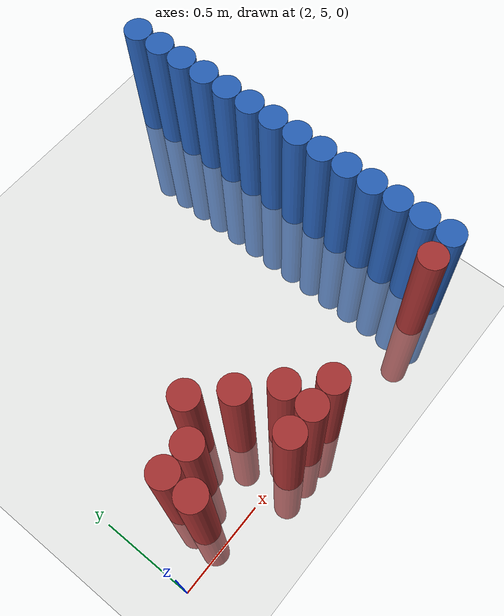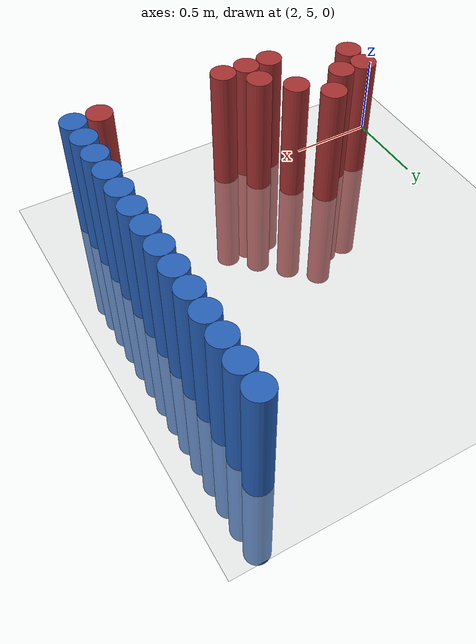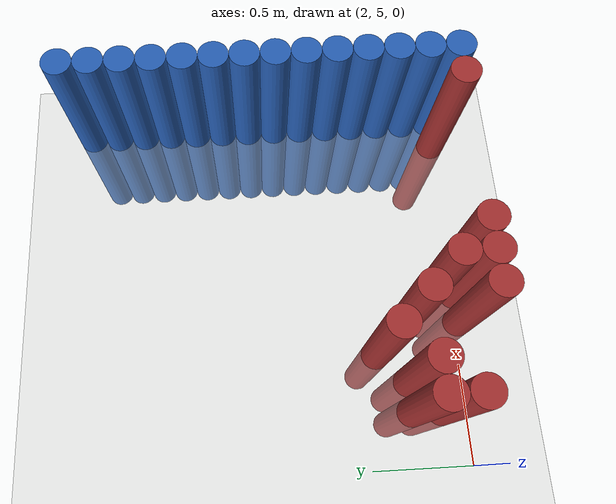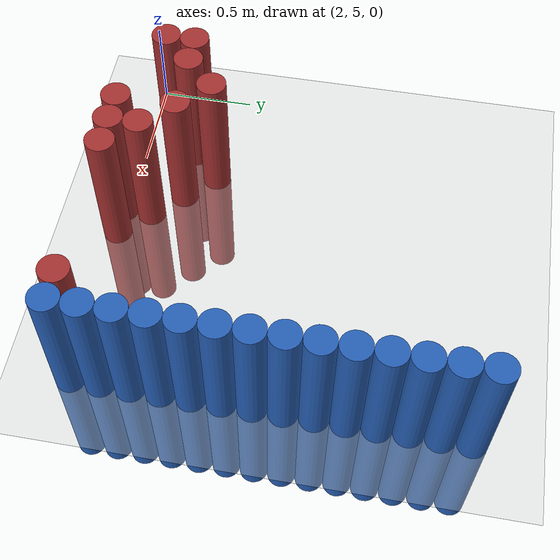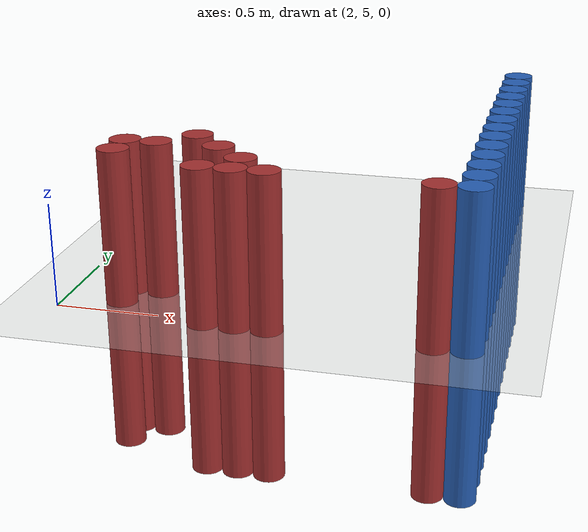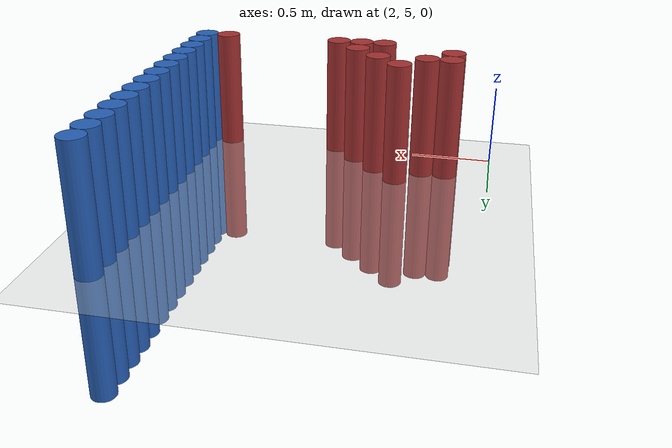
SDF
<sdf version="1.6">
 <world name="default">
  <model name="ground_plane">
   <static>1</static>
   <link name="link">
    <collision name="collision">
     <geometry><plane><normal>0 0 1</normal><size>100 100</size></plane></geometry>
     <surface><friction><ode><mu>100</mu><mu2>50</mu2></ode></friction></surface>
    </collision>
    <visual name="visual">
     <cast_shadows>0</cast_shadows>
     <geometry><plane><normal>0 0 1</normal><size>100 100</size></plane></geometry>
     <material>
      <script><uri>file://media/materials/scripts/gazebo.material</uri><name>Gazebo/Grey</name></script>
     </material>
    </visual>
   </link>
  </model>
  <model name="unit_cylinder_180">
   <static>1</static>
   <pose>3.925000 4.975000 0.000000 0.000000 0.000000 0.000000</pose>
   <link name="link">
    <inertial>
     <mass>1</mass>
     <inertia><ixx>0.145833</ixx><ixy>0</ixy><ixz>0</ixz><iyy>0.145833</iyy><iyz>0</iyz><izz>0.125</izz></inertia>
    </inertial>
    <collision name="collision">
     <geometry><cylinder><radius>0.075000</radius><length>1.5</length></cylinder></geometry>
    </collision>
    <visual name="visual">
     <geometry><cylinder><radius>0.075000</radius><length>1.5</length></cylinder></geometry>
     <material>
      <ambient>0.152000 0.379000 0.720000 1</ambient>
      <diffuse>0.152000 0.379000 0.720000 1</diffuse>
     </material>
     <material>
      <script><name>Gazebo/Grey</name><uri>file://media/materials/scripts/gazebo.material</uri></script>
     </material>
    </visual>
   </link>
  </model>
  <model name="unit_cylinder_182">
   <static>1</static>
   <pose>3.925000 5.125000 0.000000 0.000000 0.000000 0.000000</pose>
   <link name="link">
    <inertial>
     <mass>1</mass>
     <inertia><ixx>0.145833</ixx><ixy>0</ixy><ixz>0</ixz><iyy>0.145833</iyy><iyz>0</iyz><izz>0.125</izz></inertia>
    </inertial>
    <collision name="collision">
     <geometry><cylinder><radius>0.075000</radius><length>1.5</length></cylinder></geometry>
    </collision>
    <visual name="visual">
     <geometry><cylinder><radius>0.075000</radius><length>1.5</length></cylinder></geometry>
     <material>
      <ambient>0.152000 0.379000 0.720000 1</ambient>
      <diffuse>0.152000 0.379000 0.720000 1</diffuse>
     </material>
     <material>
      <script><name>Gazebo/Grey</name><uri>file://media/materials/scripts/gazebo.material</uri></script>
     </material>
    </visual>
   </link>
  </model>
  <model name="unit_cylinder_184">
   <static>1</static>
   <pose>3.925000 5.275000 0.000000 0.000000 0.000000 0.000000</pose>
   <link name="link">
    <inertial>
     <mass>1</mass>
     <inertia><ixx>0.145833</ixx><ixy>0</ixy><ixz>0</ixz><iyy>0.145833</iyy><iyz>0</iyz><izz>0.125</izz></inertia>
    </inertial>
    <collision name="collision">
     <geometry><cylinder><radius>0.075000</radius><length>1.5</length></cylinder></geometry>
    </collision>
    <visual name="visual">
     <geometry><cylinder><radius>0.075000</radius><length>1.5</length></cylinder></geometry>
     <material>
      <ambient>0.152000 0.379000 0.720000 1</ambient>
      <diffuse>0.152000 0.379000 0.720000 1</diffuse>
     </material>
     <material>
      <script><name>Gazebo/Grey</name><uri>file://media/materials/scripts/gazebo.material</uri></script>
     </material>
    </visual>
   </link>
  </model>
  <model name="unit_cylinder_186">
   <static>1</static>
   <pose>3.925000 5.425000 0.000000 0.000000 0.000000 0.000000</pose>
   <link name="link">
    <inertial>
     <mass>1</mass>
     <inertia><ixx>0.145833</ixx><ixy>0</ixy><ixz>0</ixz><iyy>0.145833</iyy><iyz>0</iyz><izz>0.125</izz></inertia>
    </inertial>
    <collision name="collision">
     <geometry><cylinder><radius>0.075000</radius><length>1.5</length></cylinder></geometry>
    </collision>
    <visual name="visual">
     <geometry><cylinder><radius>0.075000</radius><length>1.5</length></cylinder></geometry>
     <material>
      <ambient>0.152000 0.379000 0.720000 1</ambient>
      <diffuse>0.152000 0.379000 0.720000 1</diffuse>
     </material>
     <material>
      <script><name>Gazebo/Grey</name><uri>file://media/materials/scripts/gazebo.material</uri></script>
     </material>
    </visual>
   </link>
  </model>
  <model name="unit_cylinder_188">
   <static>1</static>
   <pose>3.925000 5.575000 0.000000 0.000000 0.000000 0.000000</pose>
   <link name="link">
    <inertial>
     <mass>1</mass>
     <inertia><ixx>0.145833</ixx><ixy>0</ixy><ixz>0</ixz><iyy>0.145833</iyy><iyz>0</iyz><izz>0.125</izz></inertia>
    </inertial>
    <collision name="collision">
     <geometry><cylinder><radius>0.075000</radius><length>1.5</length></cylinder></geometry>
    </collision>
    <visual name="visual">
     <geometry><cylinder><radius>0.075000</radius><length>1.5</length></cylinder></geometry>
     <material>
      <ambient>0.152000 0.379000 0.720000 1</ambient>
      <diffuse>0.152000 0.379000 0.720000 1</diffuse>
     </material>
     <material>
      <script><name>Gazebo/Grey</name><uri>file://media/materials/scripts/gazebo.material</uri></script>
     </material>
    </visual>
   </link>
  </model>
  <model name="unit_cylinder_190">
   <static>1</static>
   <pose>3.925000 5.725000 0.000000 0.000000 0.000000 0.000000</pose>
   <link name="link">
    <inertial>
     <mass>1</mass>
     <inertia><ixx>0.145833</ixx><ixy>0</ixy><ixz>0</ixz><iyy>0.145833</iyy><iyz>0</iyz><izz>0.125</izz></inertia>
    </inertial>
    <collision name="collision">
     <geometry><cylinder><radius>0.075000</radius><length>1.5</length></cylinder></geometry>
    </collision>
    <visual name="visual">
     <geometry><cylinder><radius>0.075000</radius><length>1.5</length></cylinder></geometry>
     <material>
      <ambient>0.152000 0.379000 0.720000 1</ambient>
      <diffuse>0.152000 0.379000 0.720000 1</diffuse>
     </material>
     <material>
      <script><name>Gazebo/Grey</name><uri>file://media/materials/scripts/gazebo.material</uri></script>
     </material>
    </visual>
   </link>
  </model>
  <model name="unit_cylinder_192">
   <static>1</static>
   <pose>3.925000 5.875000 0.000000 0.000000 0.000000 0.000000</pose>
   <link name="link">
    <inertial>
     <mass>1</mass>
     <inertia><ixx>0.145833</ixx><ixy>0</ixy><ixz>0</ixz><iyy>0.145833</iyy><iyz>0</iyz><izz>0.125</izz></inertia>
    </inertial>
    <collision name="collision">
     <geometry><cylinder><radius>0.075000</radius><length>1.5</length></cylinder></geometry>
    </collision>
    <visual name="visual">
     <geometry><cylinder><radius>0.075000</radius><length>1.5</length></cylinder></geometry>
     <material>
      <ambient>0.152000 0.379000 0.720000 1</ambient>
      <diffuse>0.152000 0.379000 0.720000 1</diffuse>
     </material>
     <material>
      <script><name>Gazebo/Grey</name><uri>file://media/materials/scripts/gazebo.material</uri></script>
     </material>
    </visual>
   </link>
  </model>
  <model name="unit_cylinder_194">
   <static>1</static>
   <pose>3.925000 6.025000 0.000000 0.000000 0.000000 0.000000</pose>
   <link name="link">
    <inertial>
     <mass>1</mass>
     <inertia><ixx>0.145833</ixx><ixy>0</ixy><ixz>0</ixz><iyy>0.145833</iyy><iyz>0</iyz><izz>0.125</izz></inertia>
    </inertial>
    <collision name="collision">
     <geometry><cylinder><radius>0.075000</radius><length>1.5</length></cylinder></geometry>
    </collision>
    <visual name="visual">
     <geometry><cylinder><radius>0.075000</radius><length>1.5</length></cylinder></geometry>
     <material>
      <ambient>0.152000 0.379000 0.720000 1</ambient>
      <diffuse>0.152000 0.379000 0.720000 1</diffuse>
     </material>
     <material>
      <script><name>Gazebo/Grey</name><uri>file://media/materials/scripts/gazebo.material</uri></script>
     </material>
    </visual>
   </link>
  </model>
  <model name="unit_cylinder_196">
   <static>1</static>
   <pose>3.925000 6.175000 0.000000 0.000000 0.000000 0.000000</pose>
   <link name="link">
    <inertial>
     <mass>1</mass>
     <inertia><ixx>0.145833</ixx><ixy>0</ixy><ixz>0</ixz><iyy>0.145833</iyy><iyz>0</iyz><izz>0.125</izz></inertia>
    </inertial>
    <collision name="collision">
     <geometry><cylinder><radius>0.075000</radius><length>1.5</length></cylinder></geometry>
    </collision>
    <visual name="visual">
     <geometry><cylinder><radius>0.075000</radius><length>1.5</length></cylinder></geometry>
     <material>
      <ambient>0.152000 0.379000 0.720000 1</ambient>
      <diffuse>0.152000 0.379000 0.720000 1</diffuse>
     </material>
     <material>
      <script><name>Gazebo/Grey</name><uri>file://media/materials/scripts/gazebo.material</uri></script>
     </material>
    </visual>
   </link>
  </model>
  <model name="unit_cylinder_198">
   <static>1</static>
   <pose>3.925000 6.325000 0.000000 0.000000 0.000000 0.000000</pose>
   <link name="link">
    <inertial>
     <mass>1</mass>
     <inertia><ixx>0.145833</ixx><ixy>0</ixy><ixz>0</ixz><iyy>0.145833</iyy><iyz>0</iyz><izz>0.125</izz></inertia>
    </inertial>
    <collision name="collision">
     <geometry><cylinder><radius>0.075000</radius><length>1.5</length></cylinder></geometry>
    </collision>
    <visual name="visual">
     <geometry><cylinder><radius>0.075000</radius><length>1.5</length></cylinder></geometry>
     <material>
      <ambient>0.152000 0.379000 0.720000 1</ambient>
      <diffuse>0.152000 0.379000 0.720000 1</diffuse>
     </material>
     <material>
      <script><name>Gazebo/Grey</name><uri>file://media/materials/scripts/gazebo.material</uri></script>
     </material>
    </visual>
   </link>
  </model>
  <model name="unit_cylinder_200">
   <static>1</static>
   <pose>3.925000 6.475000 0.000000 0.000000 0.000000 0.000000</pose>
   <link name="link">
    <inertial>
     <mass>1</mass>
     <inertia><ixx>0.145833</ixx><ixy>0</ixy><ixz>0</ixz><iyy>0.145833</iyy><iyz>0</iyz><izz>0.125</izz></inertia>
    </inertial>
    <collision name="collision">
     <geometry><cylinder><radius>0.075000</radius><length>1.5</length></cylinder></geometry>
    </collision>
    <visual name="visual">
     <geometry><cylinder><radius>0.075000</radius><length>1.5</length></cylinder></geometry>
     <material>
      <ambient>0.152000 0.379000 0.720000 1</ambient>
      <diffuse>0.152000 0.379000 0.720000 1</diffuse>
     </material>
     <material>
      <script><name>Gazebo/Grey</name><uri>file://media/materials/scripts/gazebo.material</uri></script>
     </material>
    </visual>
   </link>
  </model>
  <model name="unit_cylinder_202">
   <static>1</static>
   <pose>3.925000 6.625000 0.000000 0.000000 0.000000 0.000000</pose>
   <link name="link">
    <inertial>
     <mass>1</mass>
     <inertia><ixx>0.145833</ixx><ixy>0</ixy><ixz>0</ixz><iyy>0.145833</iyy><iyz>0</iyz><izz>0.125</izz></inertia>
    </inertial>
    <collision name="collision">
     <geometry><cylinder><radius>0.075000</radius><length>1.5</length></cylinder></geometry>
    </collision>
    <visual name="visual">
     <geometry><cylinder><radius>0.075000</radius><length>1.5</length></cylinder></geometry>
     <material>
      <ambient>0.152000 0.379000 0.720000 1</ambient>
      <diffuse>0.152000 0.379000 0.720000 1</diffuse>
     </material>
     <material>
      <script><name>Gazebo/Grey</name><uri>file://media/materials/scripts/gazebo.material</uri></script>
     </material>
    </visual>
   </link>
  </model>
  <model name="unit_cylinder_204">
   <static>1</static>
   <pose>3.925000 6.775000 0.000000 0.000000 0.000000 0.000000</pose>
   <link name="link">
    <inertial>
     <mass>1</mass>
     <inertia><ixx>0.145833</ixx><ixy>0</ixy><ixz>0</ixz><iyy>0.145833</iyy><iyz>0</iyz><izz>0.125</izz></inertia>
    </inertial>
    <collision name="collision">
     <geometry><cylinder><radius>0.075000</radius><length>1.5</length></cylinder></geometry>
    </collision>
    <visual name="visual">
     <geometry><cylinder><radius>0.075000</radius><length>1.5</length></cylinder></geometry>
     <material>
      <ambient>0.152000 0.379000 0.720000 1</ambient>
      <diffuse>0.152000 0.379000 0.720000 1</diffuse>
     </material>
     <material>
      <script><name>Gazebo/Grey</name><uri>file://media/materials/scripts/gazebo.material</uri></script>
     </material>
    </visual>
   </link>
  </model>
  <model name="unit_cylinder_206">
   <static>1</static>
   <pose>3.925000 6.925000 0.000000 0.000000 0.000000 0.000000</pose>
   <link name="link">
    <inertial>
     <mass>1</mass>
     <inertia><ixx>0.145833</ixx><ixy>0</ixy><ixz>0</ixz><iyy>0.145833</iyy><iyz>0</iyz><izz>0.125</izz></inertia>
    </inertial>
    <collision name="collision">
     <geometry><cylinder><radius>0.075000</radius><length>1.5</length></cylinder></geometry>
    </collision>
    <visual name="visual">
     <geometry><cylinder><radius>0.075000</radius><length>1.5</length></cylinder></geometry>
     <material>
      <ambient>0.152000 0.379000 0.720000 1</ambient>
      <diffuse>0.152000 0.379000 0.720000 1</diffuse>
     </material>
     <material>
      <script><name>Gazebo/Grey</name><uri>file://media/materials/scripts/gazebo.material</uri></script>
     </material>
    </visual>
   </link>
  </model>
  <model name="unit_cylinder_499">
   <static>1</static>
   <pose>2.275000 5.125000 0.000000 0.000000 0.000000 0.000000</pose>
   <link name="link">
    <inertial>
     <mass>1</mass>
     <inertia><ixx>0.145833</ixx><ixy>0</ixy><ixz>0</ixz><iyy>0.145833</iyy><iyz>0</iyz><izz>0.125</izz></inertia>
    </inertial>
    <collision name="collision">
     <geometry><cylinder><radius>0.075000</radius><length>1.5</length></cylinder></geometry>
    </collision>
    <visual name="visual">
     <geometry><cylinder><radius>0.075000</radius><length>1.5</length></cylinder></geometry>
     <material>
      <ambient>0.648000 0.192000 0.192000 1</ambient>
      <diffuse>0.648000 0.192000 0.192000 1</diffuse>
     </material>
     <material>
      <script><name>Gazebo/Grey</name><uri>file://media/materials/scripts/gazebo.material</uri></script>
     </material>
    </visual>
   </link>
  </model>
  <model name="unit_cylinder_500">
   <static>1</static>
   <pose>2.275000 5.275000 0.000000 0.000000 0.000000 0.000000</pose>
   <link name="link">
    <inertial>
     <mass>1</mass>
     <inertia><ixx>0.145833</ixx><ixy>0</ixy><ixz>0</ixz><iyy>0.145833</iyy><iyz>0</iyz><izz>0.125</izz></inertia>
    </inertial>
    <collision name="collision">
     <geometry><cylinder><radius>0.075000</radius><length>1.5</length></cylinder></geometry>
    </collision>
    <visual name="visual">
     <geometry><cylinder><radius>0.075000</radius><length>1.5</length></cylinder></geometry>
     <material>
      <ambient>0.648000 0.192000 0.192000 1</ambient>
      <diffuse>0.648000 0.192000 0.192000 1</diffuse>
     </material>
     <material>
      <script><name>Gazebo/Grey</name><uri>file://media/materials/scripts/gazebo.material</uri></script>
     </material>
    </visual>
   </link>
  </model>
  <model name="unit_cylinder_514">
   <static>1</static>
   <pose>2.425000 5.275000 0.000000 0.000000 0.000000 0.000000</pose>
   <link name="link">
    <inertial>
     <mass>1</mass>
     <inertia><ixx>0.145833</ixx><ixy>0</ixy><ixz>0</ixz><iyy>0.145833</iyy><iyz>0</iyz><izz>0.125</izz></inertia>
    </inertial>
    <collision name="collision">
     <geometry><cylinder><radius>0.075000</radius><length>1.5</length></cylinder></geometry>
    </collision>
    <visual name="visual">
     <geometry><cylinder><radius>0.075000</radius><length>1.5</length></cylinder></geometry>
     <material>
      <ambient>0.648000 0.192000 0.192000 1</ambient>
      <diffuse>0.648000 0.192000 0.192000 1</diffuse>
     </material>
     <material>
      <script><name>Gazebo/Grey</name><uri>file://media/materials/scripts/gazebo.material</uri></script>
     </material>
    </visual>
   </link>
  </model>
  <model name="unit_cylinder_521">
   <static>1</static>
   <pose>2.575000 5.425000 0.000000 0.000000 0.000000 0.000000</pose>
   <link name="link">
    <inertial>
     <mass>1</mass>
     <inertia><ixx>0.145833</ixx><ixy>0</ixy><ixz>0</ixz><iyy>0.145833</iyy><iyz>0</iyz><izz>0.125</izz></inertia>
    </inertial>
    <collision name="collision">
     <geometry><cylinder><radius>0.075000</radius><length>1.5</length></cylinder></geometry>
    </collision>
    <visual name="visual">
     <geometry><cylinder><radius>0.075000</radius><length>1.5</length></cylinder></geometry>
     <material>
      <ambient>0.648000 0.192000 0.192000 1</ambient>
      <diffuse>0.648000 0.192000 0.192000 1</diffuse>
     </material>
     <material>
      <script><name>Gazebo/Grey</name><uri>file://media/materials/scripts/gazebo.material</uri></script>
     </material>
    </visual>
   </link>
  </model>
  <model name="unit_cylinder_533">
   <static>1</static>
   <pose>2.725000 4.975000 0.000000 0.000000 0.000000 0.000000</pose>
   <link name="link">
    <inertial>
     <mass>1</mass>
     <inertia><ixx>0.145833</ixx><ixy>0</ixy><ixz>0</ixz><iyy>0.145833</iyy><iyz>0</iyz><izz>0.125</izz></inertia>
    </inertial>
    <collision name="collision">
     <geometry><cylinder><radius>0.075000</radius><length>1.5</length></cylinder></geometry>
    </collision>
    <visual name="visual">
     <geometry><cylinder><radius>0.075000</radius><length>1.5</length></cylinder></geometry>
     <material>
      <ambient>0.648000 0.192000 0.192000 1</ambient>
      <diffuse>0.648000 0.192000 0.192000 1</diffuse>
     </material>
     <material>
      <script><name>Gazebo/Grey</name><uri>file://media/materials/scripts/gazebo.material</uri></script>
     </material>
    </visual>
   </link>
  </model>
  <model name="unit_cylinder_534">
   <static>1</static>
   <pose>2.725000 5.275000 0.000000 0.000000 0.000000 0.000000</pose>
   <link name="link">
    <inertial>
     <mass>1</mass>
     <inertia><ixx>0.145833</ixx><ixy>0</ixy><ixz>0</ixz><iyy>0.145833</iyy><iyz>0</iyz><izz>0.125</izz></inertia>
    </inertial>
    <collision name="collision">
     <geometry><cylinder><radius>0.075000</radius><length>1.5</length></cylinder></geometry>
    </collision>
    <visual name="visual">
     <geometry><cylinder><radius>0.075000</radius><length>1.5</length></cylinder></geometry>
     <material>
      <ambient>0.648000 0.192000 0.192000 1</ambient>
      <diffuse>0.648000 0.192000 0.192000 1</diffuse>
     </material>
     <material>
      <script><name>Gazebo/Grey</name><uri>file://media/materials/scripts/gazebo.material</uri></script>
     </material>
    </visual>
   </link>
  </model>
  <model name="unit_cylinder_542">
   <static>1</static>
   <pose>2.875000 4.975000 0.000000 0.000000 0.000000 0.000000</pose>
   <link name="link">
    <inertial>
     <mass>1</mass>
     <inertia><ixx>0.145833</ixx><ixy>0</ixy><ixz>0</ixz><iyy>0.145833</iyy><iyz>0</iyz><izz>0.125</izz></inertia>
    </inertial>
    <collision name="collision">
     <geometry><cylinder><radius>0.075000</radius><length>1.5</length></cylinder></geometry>
    </collision>
    <visual name="visual">
     <geometry><cylinder><radius>0.075000</radius><length>1.5</length></cylinder></geometry>
     <material>
      <ambient>0.648000 0.192000 0.192000 1</ambient>
      <diffuse>0.648000 0.192000 0.192000 1</diffuse>
     </material>
     <material>
      <script><name>Gazebo/Grey</name><uri>file://media/materials/scripts/gazebo.material</uri></script>
     </material>
    </visual>
   </link>
  </model>
  <model name="unit_cylinder_543">
   <static>1</static>
   <pose>2.875000 5.125000 0.000000 0.000000 0.000000 0.000000</pose>
   <link name="link">
    <inertial>
     <mass>1</mass>
     <inertia><ixx>0.145833</ixx><ixy>0</ixy><ixz>0</ixz><iyy>0.145833</iyy><iyz>0</iyz><izz>0.125</izz></inertia>
    </inertial>
    <collision name="collision">
     <geometry><cylinder><radius>0.075000</radius><length>1.5</length></cylinder></geometry>
    </collision>
    <visual name="visual">
     <geometry><cylinder><radius>0.075000</radius><length>1.5</length></cylinder></geometry>
     <material>
      <ambient>0.648000 0.192000 0.192000 1</ambient>
      <diffuse>0.648000 0.192000 0.192000 1</diffuse>
     </material>
     <material>
      <script><name>Gazebo/Grey</name><uri>file://media/materials/scripts/gazebo.material</uri></script>
     </material>
    </visual>
   </link>
  </model>
  <model name="unit_cylinder_549">
   <static>1</static>
   <pose>3.025000 4.975000 0.000000 0.000000 0.000000 0.000000</pose>
   <link name="link">
    <inertial>
     <mass>1</mass>
     <inertia><ixx>0.145833</ixx><ixy>0</ixy><ixz>0</ixz><iyy>0.145833</iyy><iyz>0</iyz><izz>0.125</izz></inertia>
    </inertial>
    <collision name="collision">
     <geometry><cylinder><radius>0.075000</radius><length>1.5</length></cylinder></geometry>
    </collision>
    <visual name="visual">
     <geometry><cylinder><radius>0.075000</radius><length>1.5</length></cylinder></geometry>
     <material>
      <ambient>0.648000 0.192000 0.192000 1</ambient>
      <diffuse>0.648000 0.192000 0.192000 1</diffuse>
     </material>
     <material>
      <script><name>Gazebo/Grey</name><uri>file://media/materials/scripts/gazebo.material</uri></script>
     </material>
    </visual>
   </link>
  </model>
  <model name="unit_cylinder_599">
   <static>1</static>
   <pose>3.775000 4.975000 0.000000 0.000000 0.000000 0.000000</pose>
   <link name="link">
    <inertial>
     <mass>1</mass>
     <inertia><ixx>0.145833</ixx><ixy>0</ixy><ixz>0</ixz><iyy>0.145833</iyy><iyz>0</iyz><izz>0.125</izz></inertia>
    </inertial>
    <collision name="collision">
     <geometry><cylinder><radius>0.075000</radius><length>1.5</length></cylinder></geometry>
    </collision>
    <visual name="visual">
     <geometry><cylinder><radius>0.075000</radius><length>1.5</length></cylinder></geometry>
     <material>
      <ambient>0.648000 0.192000 0.192000 1</ambient>
      <diffuse>0.648000 0.192000 0.192000 1</diffuse>
     </material>
     <material>
      <script><name>Gazebo/Grey</name><uri>file://media/materials/scripts/gazebo.material</uri></script>
     </material>
    </visual>
   </link>
  </model>
  <model name="unit_cylinder_646">
   <static>1</static>
   <pose>3.925000 4.975000 0.000000 0.000000 0.000000 0.000000</pose>
   <link name="link">
    <inertial>
     <mass>1</mass>
     <inertia><ixx>0.145833</ixx><ixy>0</ixy><ixz>0</ixz><iyy>0.145833</iyy><iyz>0</iyz><izz>0.125</izz></inertia>
    </inertial>
    <collision name="collision">
     <geometry><cylinder><radius>0.075000</radius><length>1.5</length></cylinder></geometry>
    </collision>
    <visual name="visual">
     <geometry><cylinder><radius>0.075000</radius><length>1.5</length></cylinder></geometry>
     <material>
      <ambient>0.152000 0.379000 0.720000 1</ambient>
      <diffuse>0.152000 0.379000 0.720000 1</diffuse>
     </material>
     <material>
      <script><name>Gazebo/Grey</name><uri>file://media/materials/scripts/gazebo.material</uri></script>
     </material>
    </visual>
   </link>
  </model>
  <model name="unit_cylinder_647">
   <static>1</static>
   <pose>3.925000 5.125000 0.000000 0.000000 0.000000 0.000000</pose>
   <link name="link">
    <inertial>
     <mass>1</mass>
     <inertia><ixx>0.145833</ixx><ixy>0</ixy><ixz>0</ixz><iyy>0.145833</iyy><iyz>0</iyz><izz>0.125</izz></inertia>
    </inertial>
    <collision name="collision">
     <geometry><cylinder><radius>0.075000</radius><length>1.5</length></cylinder></geometry>
    </collision>
    <visual name="visual">
     <geometry><cylinder><radius>0.075000</radius><length>1.5</length></cylinder></geometry>
     <material>
      <ambient>0.152000 0.379000 0.720000 1</ambient>
      <diffuse>0.152000 0.379000 0.720000 1</diffuse>
     </material>
     <material>
      <script><name>Gazebo/Grey</name><uri>file://media/materials/scripts/gazebo.material</uri></script>
     </material>
    </visual>
   </link>
  </model>
  <model name="unit_cylinder_648">
   <static>1</static>
   <pose>3.925000 5.275000 0.000000 0.000000 0.000000 0.000000</pose>
   <link name="link">
    <inertial>
     <mass>1</mass>
     <inertia><ixx>0.145833</ixx><ixy>0</ixy><ixz>0</ixz><iyy>0.145833</iyy><iyz>0</iyz><izz>0.125</izz></inertia>
    </inertial>
    <collision name="collision">
     <geometry><cylinder><radius>0.075000</radius><length>1.5</length></cylinder></geometry>
    </collision>
    <visual name="visual">
     <geometry><cylinder><radius>0.075000</radius><length>1.5</length></cylinder></geometry>
     <material>
      <ambient>0.152000 0.379000 0.720000 1</ambient>
      <diffuse>0.152000 0.379000 0.720000 1</diffuse>
     </material>
     <material>
      <script><name>Gazebo/Grey</name><uri>file://media/materials/scripts/gazebo.material</uri></script>
     </material>
    </visual>
   </link>
  </model>
  <model name="unit_cylinder_649">
   <static>1</static>
   <pose>3.925000 5.425000 0.000000 0.000000 0.000000 0.000000</pose>
   <link name="link">
    <inertial>
     <mass>1</mass>
     <inertia><ixx>0.145833</ixx><ixy>0</ixy><ixz>0</ixz><iyy>0.145833</iyy><iyz>0</iyz><izz>0.125</izz></inertia>
    </inertial>
    <collision name="collision">
     <geometry><cylinder><radius>0.075000</radius><length>1.5</length></cylinder></geometry>
    </collision>
    <visual name="visual">
     <geometry><cylinder><radius>0.075000</radius><length>1.5</length></cylinder></geometry>
     <material>
      <ambient>0.152000 0.379000 0.720000 1</ambient>
      <diffuse>0.152000 0.379000 0.720000 1</diffuse>
     </material>
     <material>
      <script><name>Gazebo/Grey</name><uri>file://media/materials/scripts/gazebo.material</uri></script>
     </material>
    </visual>
   </link>
  </model>
 </world>
</sdf>
